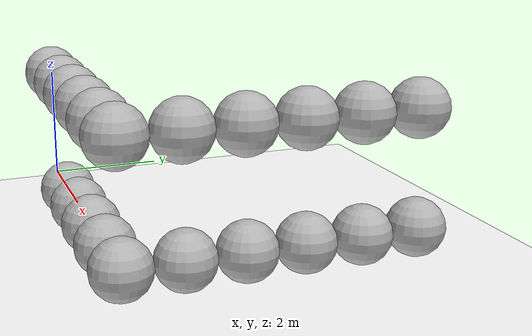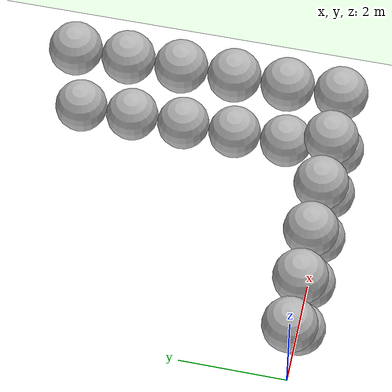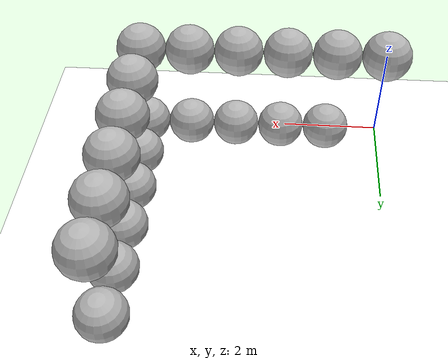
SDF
<?xml version="1.0"?>
<sdf version="1.6">
  <world name="default">
    <physics type="bullet">
      <max_step_size>0.001</max_step_size>
      <real_time_factor>1</real_time_factor>
      <real_time_update_rate>1000</real_time_update_rate>
    </physics>
    <model name="ground">
      <pose>0 0 -1 0 0 0</pose>
      <static>true</static>
      <link name="link">
        <pose>0 0 0 0 0 0</pose>
        <collision name="collision">
          <geometry>
            <box>
              <size>20 20 0.1</size>
            </box>
          </geometry>
        </collision>
        <visual name="visual">
          <geometry>
            <box>
              <size>20 20 0.1</size>
            </box>
          </geometry>
          <material>
            <ambient>1 1 1 1</ambient>
            <diffuse>1 1 1 1</diffuse>
            <specular>1 1 1 1</specular>
            <emissive>1 1 1 1</emissive>
          </material>
        </visual>
      </link>
    </model>
    <model name="sphere_1">
      <pose>1.1 0 0 0 0 0</pose>
      <link name="link_1">
        <pose>0 0 0 0 0 0</pose>
        <collision name="collision1">
          <geometry>
            <sphere>
              <radius>0.5</radius>
            </sphere>
          </geometry>
        </collision>
        <visual name="visual1">
          <geometry>
            <sphere>
              <radius>0.5</radius>
            </sphere>
          </geometry>
        </visual>
        <inertial>
          <mass>5.0</mass>
          <inertia>
            <ixx>0.5</ixx>
            <ixy>0</ixy>
            <ixz>0</ixz>
            <iyy>0.5</iyy>
            <iyz>0</iyz>
            <izz>0.5</izz>
          </inertia>
        </inertial>
      </link>
    </model>
    <model name="sphere_2">
      <pose>2.1 0 0 0 0 0</pose>
      <link name="link_1">
        <pose>0 0 0 0 0 0</pose>
        <collision name="collision1">
          <geometry>
            <sphere>
              <radius>0.5</radius>
            </sphere>
          </geometry>
        </collision>
        <visual name="visual1">
          <geometry>
            <sphere>
              <radius>0.5</radius>
            </sphere>
          </geometry>
        </visual>
        <inertial>
          <mass>5.0</mass>
          <inertia>
            <ixx>0.5</ixx>
            <ixy>0</ixy>
            <ixz>0</ixz>
            <iyy>0.5</iyy>
            <iyz>0</iyz>
            <izz>0.5</izz>
          </inertia>
        </inertial>
      </link>
    </model>
    <model name="sphere_3">
      <pose>3.1 0 0 0 0 0</pose>
      <link name="link_1">
        <pose>0 0 0 0 0 0</pose>
        <collision name="collision1">
          <geometry>
            <sphere>
              <radius>0.5</radius>
            </sphere>
          </geometry>
        </collision>
        <visual name="visual1">
          <geometry>
            <sphere>
              <radius>0.5</radius>
            </sphere>
          </geometry>
        </visual>
        <inertial>
          <mass>5.0</mass>
          <inertia>
            <ixx>0.5</ixx>
            <ixy>0</ixy>
            <ixz>0</ixz>
            <iyy>0.5</iyy>
            <iyz>0</iyz>
            <izz>0.5</izz>
          </inertia>
        </inertial>
      </link>
    </model>
    <model name="sphere_4">
      <pose>4.1 0 0 0 0 0</pose>
      <link name="link_1">
        <pose>0 0 0 0 0 0</pose>
        <collision name="collision1">
          <geometry>
            <sphere>
              <radius>0.5</radius>
            </sphere>
          </geometry>
        </collision>
        <visual name="visual1">
          <geometry>
            <sphere>
              <radius>0.5</radius>
            </sphere>
          </geometry>
        </visual>
        <inertial>
          <mass>5.0</mass>
          <inertia>
            <ixx>0.5</ixx>
            <ixy>0</ixy>
            <ixz>0</ixz>
            <iyy>0.5</iyy>
            <iyz>0</iyz>
            <izz>0.5</izz>
          </inertia>
        </inertial>
      </link>
    </model>
    <model name="sphere_5">
      <pose>5.1 0 0 0 0 0</pose>
      <link name="link_1">
        <pose>0 0 0 0 0 0</pose>
        <collision name="collision1">
          <geometry>
            <sphere>
              <radius>0.5</radius>
            </sphere>
          </geometry>
        </collision>
        <visual name="visual1">
          <geometry>
            <sphere>
              <radius>0.5</radius>
            </sphere>
          </geometry>
        </visual>
        <inertial>
          <mass>5.0</mass>
          <inertia>
            <ixx>0.5</ixx>
            <ixy>0</ixy>
            <ixz>0</ixz>
            <iyy>0.5</iyy>
            <iyz>0</iyz>
            <izz>0.5</izz>
          </inertia>
        </inertial>
      </link>
    </model>
    <model name="sphere_6">
      <pose>5.1 1 0 0 0 0</pose>
      <link name="link_1">
        <pose>0 0 0 0 0 0</pose>
        <collision name="collision1">
          <geometry>
            <sphere>
              <radius>0.5</radius>
            </sphere>
          </geometry>
        </collision>
        <visual name="visual1">
          <geometry>
            <sphere>
              <radius>0.5</radius>
            </sphere>
          </geometry>
        </visual>
        <inertial>
          <mass>5.0</mass>
          <inertia>
            <ixx>0.5</ixx>
            <ixy>0</ixy>
            <ixz>0</ixz>
            <iyy>0.5</iyy>
            <iyz>0</iyz>
            <izz>0.5</izz>
          </inertia>
        </inertial>
      </link>
    </model>
    <model name="sphere_7">
      <pose>5.1 2 0 0 0 0</pose>
      <link name="link_1">
        <pose>0 0 0 0 0 0</pose>
        <collision name="collision1">
          <geometry>
            <sphere>
              <radius>0.5</radius>
            </sphere>
          </geometry>
        </collision>
        <visual name="visual1">
          <geometry>
            <sphere>
              <radius>0.5</radius>
            </sphere>
          </geometry>
        </visual>
        <inertial>
          <mass>5.0</mass>
          <inertia>
            <ixx>0.5</ixx>
            <ixy>0</ixy>
            <ixz>0</ixz>
            <iyy>0.5</iyy>
            <iyz>0</iyz>
            <izz>0.5</izz>
          </inertia>
        </inertial>
      </link>
    </model>
    <model name="sphere_8">
      <pose>5.1 3 0 0 0 0</pose>
      <link name="link_1">
        <pose>0 0 0 0 0 0</pose>
        <collision name="collision1">
          <geometry>
            <sphere>
              <radius>0.5</radius>
            </sphere>
          </geometry>
        </collision>
        <visual name="visual1">
          <geometry>
            <sphere>
              <radius>0.5</radius>
            </sphere>
          </geometry>
        </visual>
        <inertial>
          <mass>5.0</mass>
          <inertia>
            <ixx>0.5</ixx>
            <ixy>0</ixy>
            <ixz>0</ixz>
            <iyy>0.5</iyy>
            <iyz>0</iyz>
            <izz>0.5</izz>
          </inertia>
        </inertial>
      </link>
    </model>
    <model name="sphere_9">
      <pose>5.1 4 0 0 0 0</pose>
      <link name="link_1">
        <pose>0 0 0 0 0 0</pose>
        <collision name="collision1">
          <geometry>
            <sphere>
              <radius>0.5</radius>
            </sphere>
          </geometry>
        </collision>
        <visual name="visual1">
          <geometry>
            <sphere>
              <radius>0.5</radius>
            </sphere>
          </geometry>
        </visual>
        <inertial>
          <mass>5.0</mass>
          <inertia>
            <ixx>0.5</ixx>
            <ixy>0</ixy>
            <ixz>0</ixz>
            <iyy>0.5</iyy>
            <iyz>0</iyz>
            <izz>0.5</izz>
          </inertia>
        </inertial>
      </link>
    </model>
    <model name="sphere_10">
      <pose>5.1 5 0 0 0 0</pose>
      <link name="link_1">
        <pose>0 0 0 0 0 0</pose>
        <collision name="collision1">
          <geometry>
            <sphere>
              <radius>0.5</radius>
            </sphere>
          </geometry>
        </collision>
        <visual name="visual1">
          <geometry>
            <sphere>
              <radius>0.5</radius>
            </sphere>
          </geometry>
        </visual>
        <inertial>
          <mass>5.0</mass>
          <inertia>
            <ixx>0.5</ixx>
            <ixy>0</ixy>
            <ixz>0</ixz>
            <iyy>0.5</iyy>
            <iyz>0</iyz>
            <izz>0.5</izz>
          </inertia>
        </inertial>
      </link>
    </model>
    <model name="sphere_11">
      <pose>5 5 2 0 0 0</pose>
      <link name="link_1">
        <pose>0 0 0 0 0 0</pose>
        <collision name="collision1">
          <geometry>
            <sphere>
              <radius>0.5</radius>
            </sphere>
          </geometry>
        </collision>
        <visual name="visual1">
          <geometry>
            <sphere>
              <radius>0.5</radius>
            </sphere>
          </geometry>
        </visual>
        <inertial>
          <mass>5.0</mass>
          <inertia>
            <ixx>0.5</ixx>
            <ixy>0</ixy>
            <ixz>0</ixz>
            <iyy>0.5</iyy>
            <iyz>0</iyz>
            <izz>0.5</izz>
          </inertia>
        </inertial>
      </link>
    </model>
    <model name="sphere_12">
      <pose>5 4 2 0 0 0</pose>
      <link name="link_1">
        <pose>0 0 0 0 0 0</pose>
        <collision name="collision1">
          <geometry>
            <sphere>
              <radius>0.5</radius>
            </sphere>
          </geometry>
        </collision>
        <visual name="visual1">
          <geometry>
            <sphere>
              <radius>0.5</radius>
            </sphere>
          </geometry>
        </visual>
        <inertial>
          <mass>5.0</mass>
          <inertia>
            <ixx>0.5</ixx>
            <ixy>0</ixy>
            <ixz>0</ixz>
            <iyy>0.5</iyy>
            <iyz>0</iyz>
            <izz>0.5</izz>
          </inertia>
        </inertial>
      </link>
    </model>
    <model name="sphere_13">
      <pose>5 3 2 0 0 0</pose>
      <link name="link_1">
        <pose>0 0 0 0 0 0</pose>
        <collision name="collision1">
          <geometry>
            <sphere>
              <radius>0.5</radius>
            </sphere>
          </geometry>
        </collision>
        <visual name="visual1">
          <geometry>
            <sphere>
              <radius>0.5</radius>
            </sphere>
          </geometry>
        </visual>
        <inertial>
          <mass>5.0</mass>
          <inertia>
            <ixx>0.5</ixx>
            <ixy>0</ixy>
            <ixz>0</ixz>
            <iyy>0.5</iyy>
            <iyz>0</iyz>
            <izz>0.5</izz>
          </inertia>
        </inertial>
      </link>
    </model>
    <model name="sphere_14">
      <pose>5 2 2 0 0 0</pose>
      <link name="link_1">
        <pose>0 0 0 0 0 0</pose>
        <collision name="collision1">
          <geometry>
            <sphere>
              <radius>0.5</radius>
            </sphere>
          </geometry>
        </collision>
        <visual name="visual1">
          <geometry>
            <sphere>
              <radius>0.5</radius>
            </sphere>
          </geometry>
        </visual>
        <inertial>
          <mass>5.0</mass>
          <inertia>
            <ixx>0.5</ixx>
            <ixy>0</ixy>
            <ixz>0</ixz>
            <iyy>0.5</iyy>
            <iyz>0</iyz>
            <izz>0.5</izz>
          </inertia>
        </inertial>
      </link>
    </model>
    <model name="sphere_15">
      <pose>5 1 2 0 0 0</pose>
      <link name="link_1">
        <pose>0 0 0 0 0 0</pose>
        <collision name="collision1">
          <geometry>
            <sphere>
              <radius>0.5</radius>
            </sphere>
          </geometry>
        </collision>
        <visual name="visual1">
          <geometry>
            <sphere>
              <radius>0.5</radius>
            </sphere>
          </geometry>
        </visual>
        <inertial>
          <mass>5.0</mass>
          <inertia>
            <ixx>0.5</ixx>
            <ixy>0</ixy>
            <ixz>0</ixz>
            <iyy>0.5</iyy>
            <iyz>0</iyz>
            <izz>0.5</izz>
          </inertia>
        </inertial>
      </link>
    </model>
    <model name="sphere_16">
      <pose>5 0 2 0 0 0</pose>
      <link name="link_1">
        <pose>0 0 0 0 0 0</pose>
        <collision name="collision1">
          <geometry>
            <sphere>
              <radius>0.5</radius>
            </sphere>
          </geometry>
        </collision>
        <visual name="visual1">
          <geometry>
            <sphere>
              <radius>0.5</radius>
            </sphere>
          </geometry>
        </visual>
        <inertial>
          <mass>5.0</mass>
          <inertia>
            <ixx>0.5</ixx>
            <ixy>0</ixy>
            <ixz>0</ixz>
            <iyy>0.5</iyy>
            <iyz>0</iyz>
            <izz>0.5</izz>
          </inertia>
        </inertial>
      </link>
    </model>
    <model name="sphere_17">
      <pose>4 0 2 0 0 0</pose>
      <link name="link_1">
        <pose>0 0 0 0 0 0</pose>
        <collision name="collision1">
          <geometry>
            <sphere>
              <radius>0.5</radius>
            </sphere>
          </geometry>
        </collision>
        <visual name="visual1">
          <geometry>
            <sphere>
              <radius>0.5</radius>
            </sphere>
          </geometry>
        </visual>
        <inertial>
          <mass>5.0</mass>
          <inertia>
            <ixx>0.5</ixx>
            <ixy>0</ixy>
            <ixz>0</ixz>
            <iyy>0.5</iyy>
            <iyz>0</iyz>
            <izz>0.5</izz>
          </inertia>
        </inertial>
      </link>
    </model>
    <model name="sphere_18">
      <pose>3 0 2 0 0 0</pose>
      <link name="link_1">
        <pose>0 0 0 0 0 0</pose>
        <collision name="collision1">
          <geometry>
            <sphere>
              <radius>0.5</radius>
            </sphere>
          </geometry>
        </collision>
        <visual name="visual1">
          <geometry>
            <sphere>
              <radius>0.5</radius>
            </sphere>
          </geometry>
        </visual>
        <inertial>
          <mass>5.0</mass>
          <inertia>
            <ixx>0.5</ixx>
            <ixy>0</ixy>
            <ixz>0</ixz>
            <iyy>0.5</iyy>
            <iyz>0</iyz>
            <izz>0.5</izz>
          </inertia>
        </inertial>
      </link>
    </model>
    <model name="sphere_19">
      <pose>2 0 2 0 0 0</pose>
      <link name="link_1">
        <pose>0 0 0 0 0 0</pose>
        <collision name="collision1">
          <geometry>
            <sphere>
              <radius>0.5</radius>
            </sphere>
          </geometry>
        </collision>
        <visual name="visual1">
          <geometry>
            <sphere>
              <radius>0.5</radius>
            </sphere>
          </geometry>
        </visual>
        <inertial>
          <mass>5.0</mass>
          <inertia>
            <ixx>0.5</ixx>
            <ixy>0</ixy>
            <ixz>0</ixz>
            <iyy>0.5</iyy>
            <iyz>0</iyz>
            <izz>0.5</izz>
          </inertia>
        </inertial>
      </link>
    </model>
    <model name="sphere_20">
      <pose>1 0 2 0 0 0</pose>
      <link name="link_1">
        <pose>0 0 0 0 0 0</pose>
        <collision name="collision1">
          <geometry>
            <sphere>
              <radius>0.5</radius>
            </sphere>
          </geometry>
        </collision>
        <visual name="visual1">
          <geometry>
            <sphere>
              <radius>0.5</radius>
            </sphere>
          </geometry>
        </visual>
        <inertial>
          <mass>5.0</mass>
          <inertia>
            <ixx>0.5</ixx>
            <ixy>0</ixy>
            <ixz>0</ixz>
            <iyy>0.5</iyy>
            <iyz>0</iyz>
            <izz>0.5</izz>
          </inertia>
        </inertial>
      </link>
    </model>
    <model name="sphere_21">
      <pose>0 0 2 0 0 0</pose>
      <link name="link_1">
        <pose>0 0 0 0 0 0</pose>
        <collision name="collision1">
          <geometry>
            <sphere>
              <radius>0.5</radius>
            </sphere>
          </geometry>
        </collision>
        <visual name="visual1">
          <geometry>
            <sphere>
              <radius>0.5</radius>
            </sphere>
          </geometry>
        </visual>
        <inertial>
          <mass>5.0</mass>
          <inertia>
            <ixx>0.5</ixx>
            <ixy>0</ixy>
            <ixz>0</ixz>
            <iyy>0.5</iyy>
            <iyz>0</iyz>
            <izz>0.5</izz>
          </inertia>
        </inertial>
      </link>
    </model>
  </world>
</sdf>
